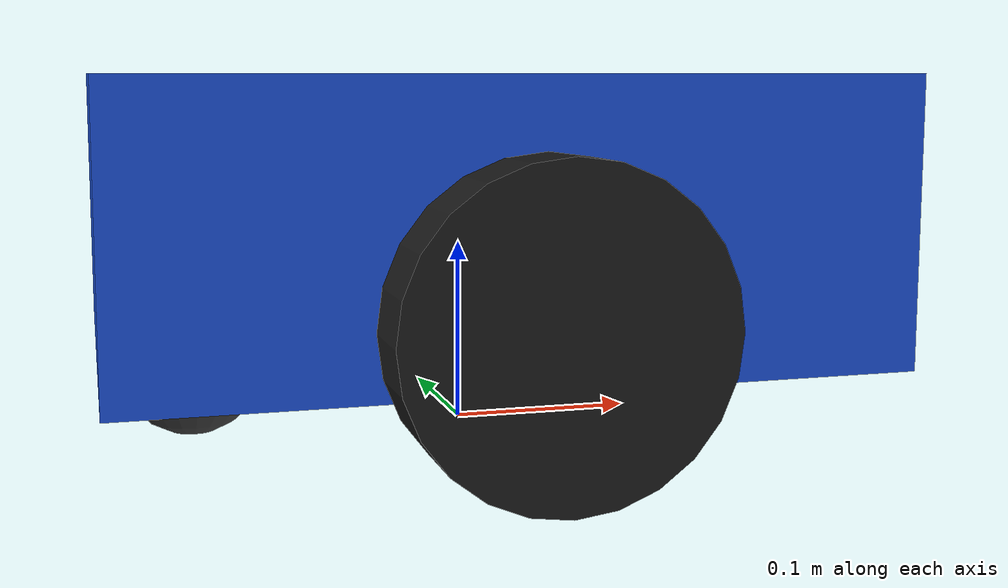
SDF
<?xml version="1.0" ?>
<sdf version="1.10">
  <model name="pf_robot">
    <!-- canonical link -->
    <link name="base_link">
      <pose>0 0 0.12 0 0 0</pose>
      <inertial>
        <mass>5.0</mass>
        <inertia>
          <ixx>0.0469</ixx><iyy>0.0760</iyy><izz>0.1042</izz>
          <ixy>0</ixy><ixz>0</ixz><iyz>0</iyz>
        </inertia>
      </inertial>
      <collision name="chassis_col">
        <geometry><box><size>0.40 0.30 0.15</size></box></geometry>
      </collision>
      <visual name="chassis_vis">
        <geometry><box><size>0.40 0.30 0.15</size></box></geometry>
        <material>
          <ambient>0.1 0.2 0.6 1</ambient>
          <diffuse>0.1 0.3 0.8 1</diffuse>
        </material>
      </visual>
      <!-- a little nose so the front is obvious -->
      <visual name="nose_vis">
        <pose>0.22 0 0 0 0 0</pose>
        <geometry><box><size>0.05 0.10 0.05</size></box></geometry>
        <material><ambient>0.9 0.9 0.1 1</ambient><diffuse>0.9 0.9 0.1 1</diffuse></material>
      </visual>

      <!-- forward-facing camera: looks along +X (robot forward) -->
      <sensor name="camera" type="camera">
        <pose>0.18 0 0.20 0 0 0</pose>
        <always_on>1</always_on>
        <update_rate>10</update_rate>
        <visualize>true</visualize>
        <topic>camera</topic>
        <camera>
          <horizontal_fov>1.50</horizontal_fov>
          <image><width>640</width><height>480</height><format>R8G8B8</format></image>
          <clip><near>0.05</near><far>30.0</far></clip>
          <optical_frame_id>camera_optical</optical_frame_id>
        </camera>
      </sensor>
    </link>

    <!-- drive wheels -->
    <link name="left_wheel">
      <pose>0 0.18 0.08 -1.5707963 0 0</pose>
      <inertial>
        <mass>0.5</mass>
        <inertia><ixx>0.000867</ixx><iyy>0.000867</iyy><izz>0.0016</izz>
          <ixy>0</ixy><ixz>0</ixz><iyz>0</iyz></inertia>
      </inertial>
      <collision name="col">
        <geometry><cylinder><radius>0.08</radius><length>0.04</length></cylinder></geometry>
        <surface><friction><ode><mu>1.0</mu><mu2>1.0</mu2></ode></friction></surface>
      </collision>
      <visual name="vis">
        <geometry><cylinder><radius>0.08</radius><length>0.04</length></cylinder></geometry>
        <material><ambient>0.05 0.05 0.05 1</ambient><diffuse>0.1 0.1 0.1 1</diffuse></material>
      </visual>
    </link>
    <link name="right_wheel">
      <pose>0 -0.18 0.08 -1.5707963 0 0</pose>
      <inertial>
        <mass>0.5</mass>
        <inertia><ixx>0.000867</ixx><iyy>0.000867</iyy><izz>0.0016</izz>
          <ixy>0</ixy><ixz>0</ixz><iyz>0</iyz></inertia>
      </inertial>
      <collision name="col">
        <geometry><cylinder><radius>0.08</radius><length>0.04</length></cylinder></geometry>
        <surface><friction><ode><mu>1.0</mu><mu2>1.0</mu2></ode></friction></surface>
      </collision>
      <visual name="vis">
        <geometry><cylinder><radius>0.08</radius><length>0.04</length></cylinder></geometry>
        <material><ambient>0.05 0.05 0.05 1</ambient><diffuse>0.1 0.1 0.1 1</diffuse></material>
      </visual>
    </link>

    <!-- frictionless caster (ball) at the back for stability -->
    <link name="caster">
      <pose>-0.15 0 0.04 0 0 0</pose>
      <inertial>
        <mass>0.2</mass>
        <inertia><ixx>0.000128</ixx><iyy>0.000128</iyy><izz>0.000128</izz>
          <ixy>0</ixy><ixz>0</ixz><iyz>0</iyz></inertia>
      </inertial>
      <collision name="col">
        <geometry><sphere><radius>0.04</radius></sphere></geometry>
        <surface><friction><ode><mu>0.0</mu><mu2>0.0</mu2></ode></friction></surface>
      </collision>
      <visual name="vis">
        <geometry><sphere><radius>0.04</radius></sphere></geometry>
        <material><ambient>0.2 0.2 0.2 1</ambient><diffuse>0.2 0.2 0.2 1</diffuse></material>
      </visual>
    </link>

    <joint name="left_wheel_joint" type="revolute">
      <parent>base_link</parent><child>left_wheel</child>
      <axis><xyz>0 0 1</xyz><limit><lower>-1e16</lower><upper>1e16</upper></limit></axis>
    </joint>
    <joint name="right_wheel_joint" type="revolute">
      <parent>base_link</parent><child>right_wheel</child>
      <axis><xyz>0 0 1</xyz><limit><lower>-1e16</lower><upper>1e16</upper></limit></axis>
    </joint>
    <joint name="caster_joint" type="fixed">
      <parent>base_link</parent><child>caster</child>
    </joint>

    <!-- differential drive: subscribes /cmd_vel, publishes /odom -->
    <plugin filename="gz-sim-diff-drive-system" name="gz::sim::systems::DiffDrive">
      <left_joint>left_wheel_joint</left_joint>
      <right_joint>right_wheel_joint</right_joint>
      <wheel_separation>0.36</wheel_separation>
      <wheel_radius>0.08</wheel_radius>
      <odom_publish_frequency>50</odom_publish_frequency>
      <topic>/cmd_vel</topic>
      <odom_topic>/odom</odom_topic>
      <frame_id>odom</frame_id>
      <child_frame_id>base_link</child_frame_id>
      <max_linear_acceleration>3.0</max_linear_acceleration>
    </plugin>

    <!-- ground-truth pose (world frame) for visualization/evaluation only -->
    <plugin filename="gz-sim-pose-publisher-system" name="gz::sim::systems::PosePublisher">
      <publish_link_pose>false</publish_link_pose>
      <publish_collision_pose>false</publish_collision_pose>
      <publish_visual_pose>false</publish_visual_pose>
      <publish_nested_model_pose>false</publish_nested_model_pose>
      <publish_model_pose>true</publish_model_pose>
      <use_pose_vector_msg>false</use_pose_vector_msg>
      <update_frequency>50</update_frequency>
    </plugin>
  </model>
</sdf>
